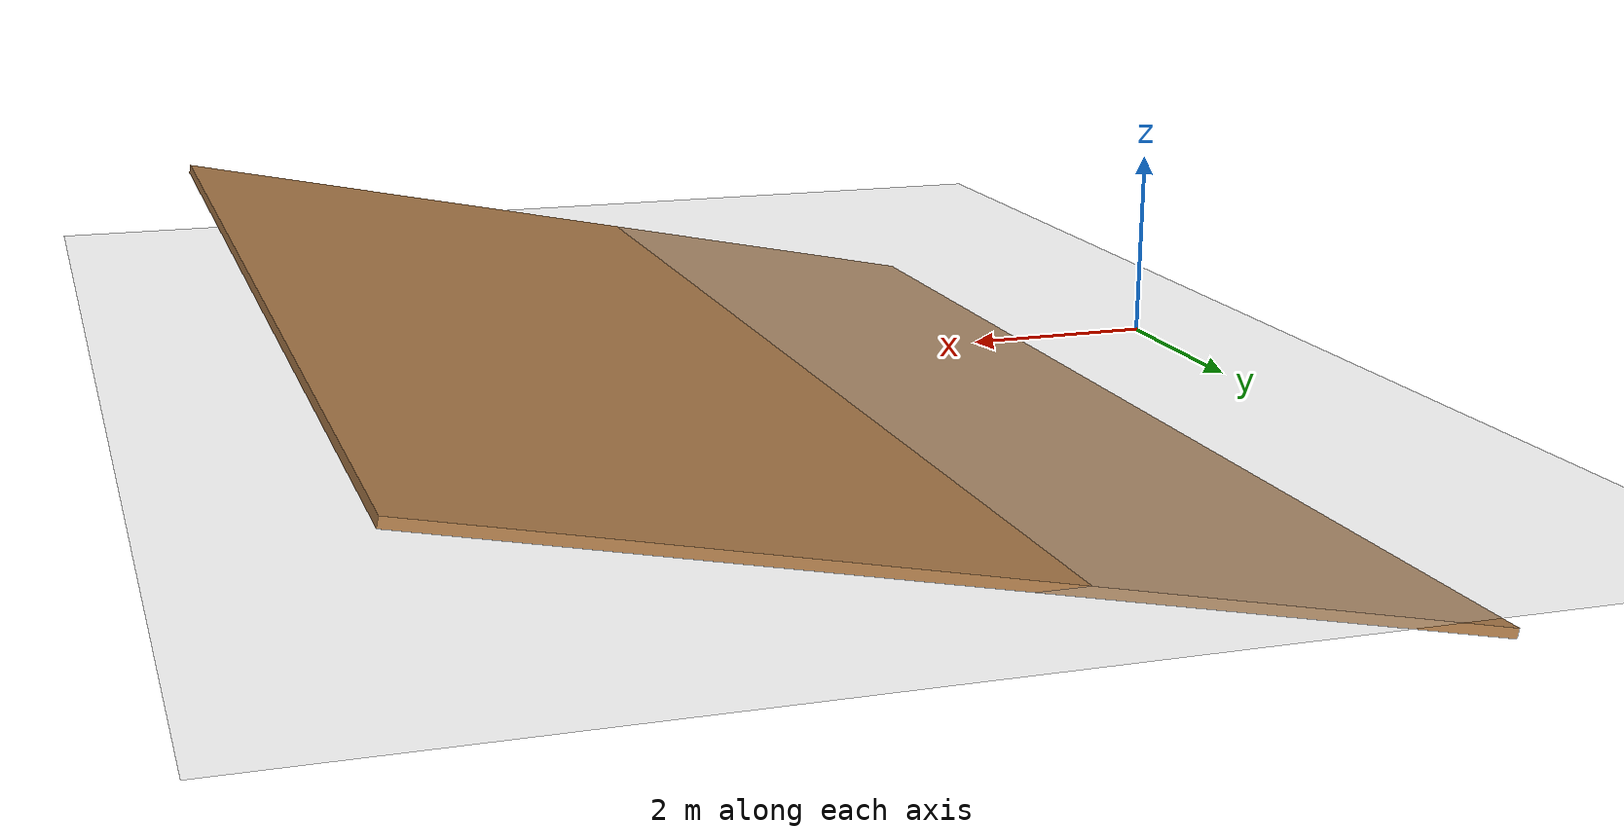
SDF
<?xml version="1.0" ?>
<sdf version="1.6">
  <world name="default">
    <include>
      <uri>model://sun</uri>
    </include>
    <include>
      <uri>model://ground_plane</uri>
    </include>

    <model name="ramp">
      <static>true</static>
      <pose>5.0 0 0.1 0 -0.2 0</pose>
      <link name="link">
        <collision name="collision">
          <geometry>
            <box>
              <size>10.0 15.0 0.1</size> </box>
          </geometry>
        </collision>
        <visual name="visual">
          <geometry>
            <box>
              <size>10.0 15.0 0.1</size>
            </box>
          </geometry>
          <material>
            <script>
              <uri>file://media/materials/scripts/gazebo.material</uri>
              <name>Gazebo/Wood</name>
            </script>
          </material>
        </visual>
      </link>
    </model>
  </world>
</sdf>
